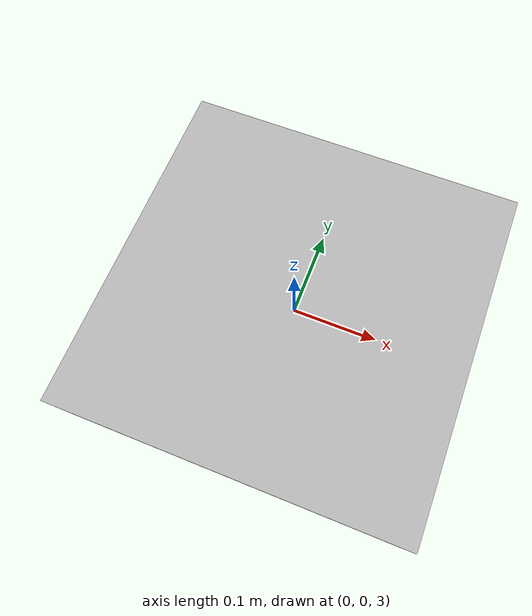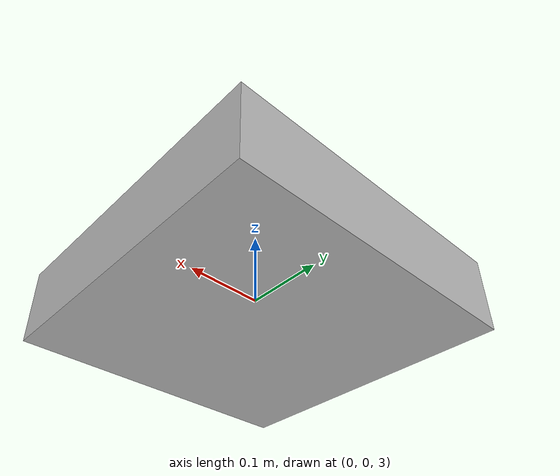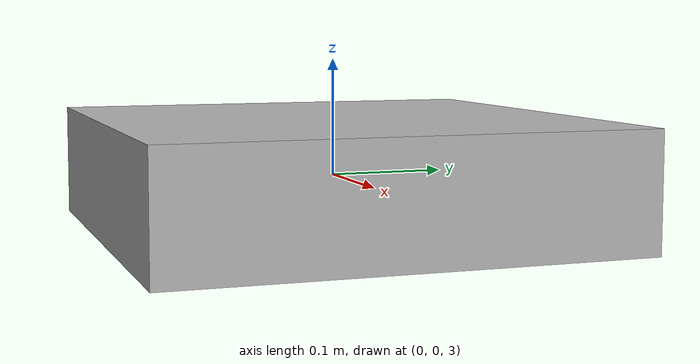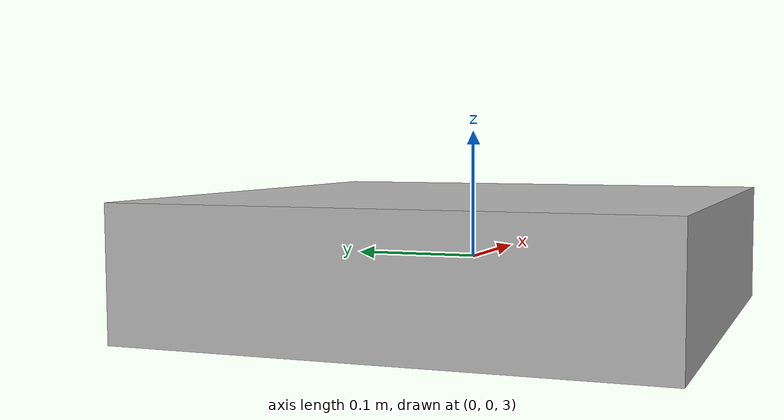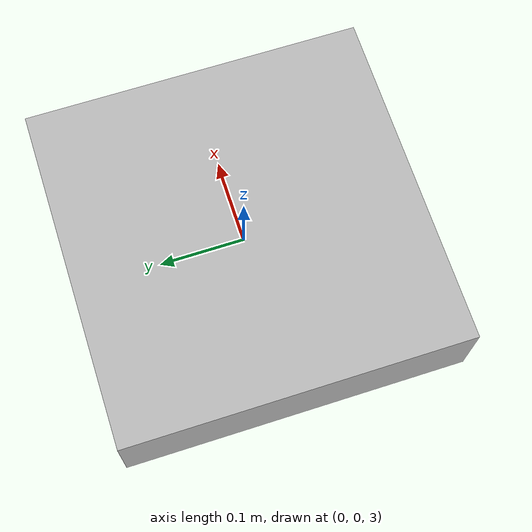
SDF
<?xml version="1.0" ?>
<sdf version="1.9">
  <model name="quadcopter">
    <static>false</static>
    <pose>0 0 3 0 0 0</pose>

    <link name="base_link">

      <!-- Gövde -->
      <visual name="body">
        <geometry>
          <box>
            <size>0.4 0.4 0.1</size>
          </box>
        </geometry>
      </visual>

      <collision name="collision">
        <geometry>
          <box>
            <size>0.4 0.4 0.1</size>
          </box>
        </geometry>
      </collision>

      <inertial>
        <mass>1.0</mass>
      </inertial>

      <!-- KAMERA -->
      <sensor name="front_camera" type="camera">
        <pose>0.2 0 0 0 0 0</pose>
        <topic>quadcopter/camera/image</topic>
        <camera>
          <horizontal_fov>1.047</horizontal_fov>
          <image>
            <width>640</width>
            <height>480</height>
            <format>R8G8B8</format>
          </image>
          <clip>
            <near>0.1</near>
            <far>100</far>
          </clip>
        </camera>
        <always_on>true</always_on>
        <update_rate>30</update_rate>
        <visualize>true</visualize>
        <plugin filename="ignition-gazebo-sensors-system" name="ignition::gazebo::systems::Sensors">
          <render_engine>ogre2</render_engine>
        </plugin>
      </sensor>

    </link>
  </model>
</sdf>
